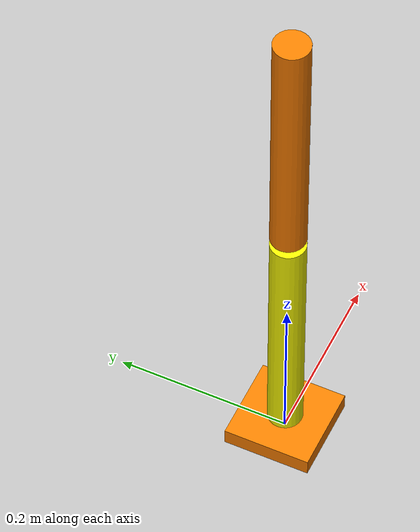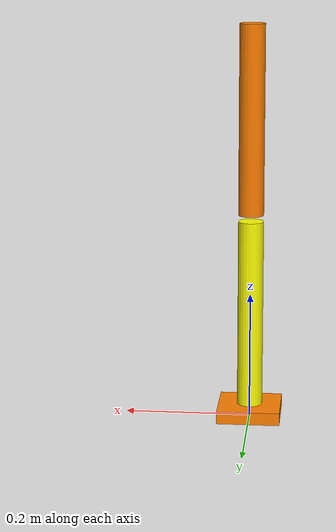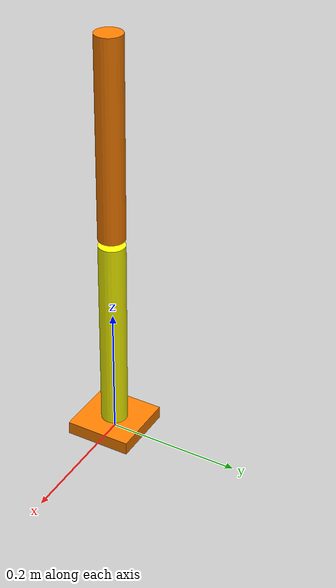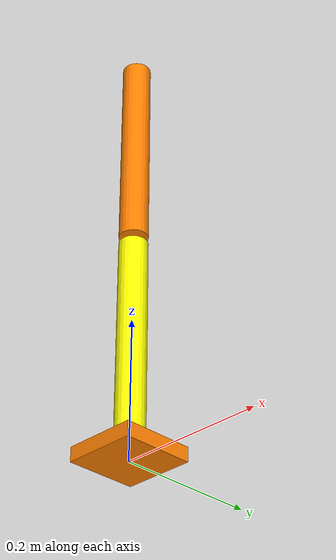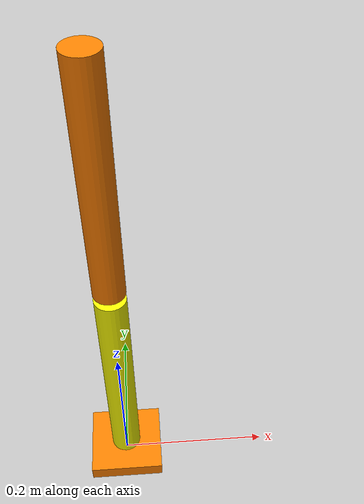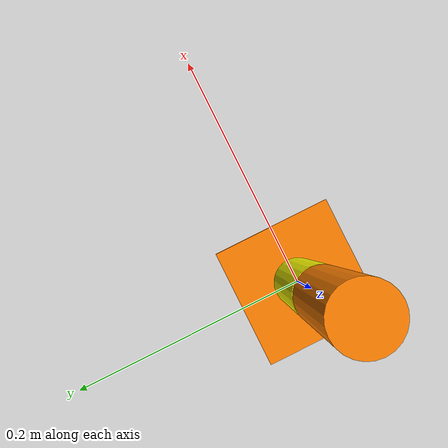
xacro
<?xml version= "1.0"?>
<robot name="my_robot" xmlns:xacro="http://www.ros.org/wiki/xacro">
    <!--by adding above url we can add direct variable-->
    <!--Ex.  ${pi/2} instead of 1.57-->

    <!--THIS IS MAIN FILE WHICH CONTAIN TWO XACRO FILE-->
    <!--TO SHORTEN THE CODE WE INCLUDE FILE IN THIS MAIN FILE-->

    <xacro:include filename="common_properties.xacro" />
    <xacro:include filename="arm.xacro" />
    <xacro:include filename="arm_gazebo.xacro" />

</robot>

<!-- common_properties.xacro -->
<robot xmlns:xacro="http://www.ros.org/wiki/xacro">

   <!--THIS XACRO FILE CONTAINS COMMON PROPERTIES-->

   <!--add colour-->
    <material name ="grey">
        <color rgba="0.7 0.7 0.7 1" />
    </material>

    <material name ="green">
        <color rgba="0 0.6 0 1" />
    </material>

    <material name="white">
        <color rgba="1 1 1 1" />
    </material>

    <material name="blue">
        <color rgba="0 0 0.5 1" />
    </material>

    <material name="yellow">
        <color rgba="1 1 0 1" />
    </material>

    <material name="orange">
        <color rgba="1 0.5 0.0 1" />
    </material>

    <!--for MOI of perticular shape == serach list of moment of inertia(wiki)-->

    <!--macro for box inertia which is same for all boxes-->
    <xacro:macro name="box_inertia" params="m x y z o_xyz o_rpy">
        <inertial>
            <mass value="${m}" />
            <origin xyz="${o_xyz}" rpy="${o_rpy}" />
            <!--formula for MOI == x = (mass/12)*(y*y + z*z)-->
            <inertia ixx="${(m/12) * (y*y + z*z)}" ixy="0.0" ixz="0.0"
                     iyy="${(m/12) * (x*x + z*z)}" iyz="0.0"
                     izz="${(m/12) * (x*x + y*y)}" />
        </inertial>
    </xacro:macro>

    <!--macro for cylinder-->
    <xacro:macro name="cylinder_inertia" params="m r h o_xyz o_rpy">
        <inertial>
            <mass value="${m}" />
            <origin xyz="${o_xyz}" rpy="${o_rpy}" />
            <inertia ixx="${(m/12) * (3*r*r + h*h)}" ixy="0" ixz="0"
                     iyy="${(m/12) * (3*r*r + h*h)}" iyz="0"
                     izz="${(m*r*r)/2}" />
        </inertial>
    </xacro:macro>

    <!--macro for sphere-->
    <xacro:macro name="sphere_inertia" params="m r o_xyz o_rpy">
        <inertial>
            <mass value="${m}" />
            <origin xyz="${o_xyz}" rpy="${o_rpy}" />
            <inertia ixx="${(2*m*r*r)/5}" ixy="0" ixz="0"
                     iyy="${(2*m*r*r)/5}" iyz="0"
                     izz="${(2*m*r*r)/5}" />
        </inertial>
    </xacro:macro>

</robot>

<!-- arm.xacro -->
<robot xmlns:xacro="http://www.ros.org/wiki/xacro">

    <xacro:property name="arm_base_link_length" value="0.1" />
    <xacro:property name="arm_base_link_width" value="0.1" />
    <xacro:property name="arm_base_link_height" value="0.02" />

    <xacro:property name="arm_radius" value="0.02" />
    <xacro:property name="arm_length" value="0.3" />

    <link name="arm_base_link">
        <visual>
            <geometry>
                <box size="${arm_base_link_length} ${arm_base_link_width} ${arm_base_link_height}" />
            </geometry>
            <origin xyz="0 0 ${arm_base_link_height / 2.0 }" rpy="0 0 0" />
            <material name="orange" />
        </visual>
        <collision>
            <geometry>
                <box size="${arm_base_link_length} ${arm_base_link_width} ${arm_base_link_height}" />
            </geometry>
            <origin xyz="0 0 0" rpy="0 0 0" />
        </collision>
        <xacro:box_inertia m="0.5" x="${arm_base_link_length}" y="${arm_base_link_width}" z="${arm_base_link_height}"
                           o_xyz="0 0 ${arm_base_link_height / 2.0 }" o_rpy="0 0 0" />
    </link>

   <!-- if you want to change the visual the it has to be in visual tags-->
    <link name="forearm_link">
        <visual>
            <geometry>
                <cylinder radius="${arm_radius}" length="${arm_length}" />
            </geometry>
            <origin xyz="0 0 ${arm_length / 2.0}" rpy="0 0 0" />
            <material name="yellow" />
        </visual>
        <collision>
            <geometry>
                <sphere radius="${arm_radius}" />
            </geometry>
            <origin xyz="0 0 ${arm_length / 2.0}" rpy="0 0 0" />
        </collision>
        <xacro:cylinder_inertia m="0.3" r="${arm_radius}" h="${arm_length}"
                                o_xyz="0 0 ${arm_length / 2.0}" o_rpy="0 0 0" />
    </link>

    <link name="hand_link">
        <visual>
            <geometry>
                <cylinder radius="${arm_radius}" length="${arm_length}" />
            </geometry>
            <origin xyz="0 0 ${arm_length / 2.0}" rpy="0 0 0" />
            <material name="orange" />
        </visual>
        <collision>
            <geometry>
                <sphere radius="${arm_radius}" />
            </geometry>
            <origin xyz="0 0 ${arm_length / 2.0}" rpy="0 0 0" />
        </collision>
        <xacro:cylinder_inertia m="0.3" r="${arm_radius}" h="${arm_length}"
                                o_xyz="0 0 ${arm_length / 2.0}" o_rpy="0 0 0" />
    </link>

    <joint name="base_forearm_joint" type="revolute">
        <parent link="arm_base_link" />
        <child link="forearm_link" />
        <origin xyz="0 0 ${arm_base_link_height}" rpy="0 0 0" />
        <axis xyz="0 1 0" />
        <limit lower="0" upper="${pi / 2.0}" velocity="100" effort="100" />
        <dynamics friction="0.3" damping="0.3" />
    </joint>

    <joint name="forearm_hand_joint" type="revolute">
        <parent link="forearm_link" />
        <child link="hand_link" />
        <origin xyz="0 0 ${arm_length + (arm_base_link_height / 2.0)}" rpy="0 0 0" />
        <axis xyz="0 1 0" />
        <limit lower="0" upper="${pi / 2.0}" velocity="100" effort="100" />
        <dynamics friction="0.3" damping="0.3" />
    </joint>

</robot>
